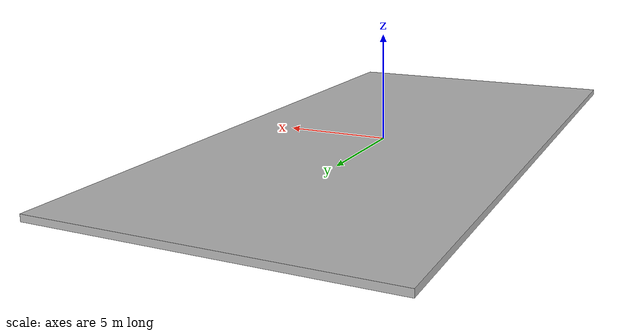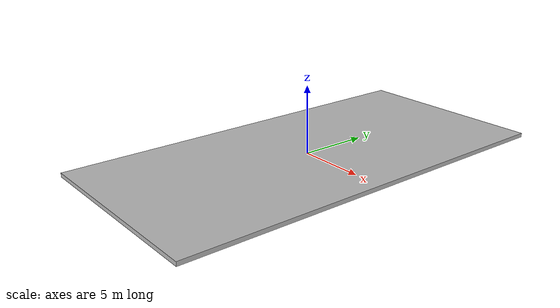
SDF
<?xml version="1.0" ?>
<sdf version="1.5">
  <model name="lane_cross">
    <static>true</static>
    <link name="link">
      <collision name="collision">
        <geometry>
          <box>
            <size>15 30 .3</size>
          </box>
        </geometry>
      </collision>
      <visual name="visual">
        <cast_shadows>false</cast_shadows>
        <geometry>
          <box>
            <size>15 30 .3</size>
          </box>
        </geometry>
        <material>
          <script>
            <uri>model://lane_cross/materials/scripts</uri>
            <uri>model://lane_cross/materials/textures</uri>
            <name>vrc/lane_cross</name>
          </script>
        </material>
      </visual>
    </link>
  </model>
</sdf>
